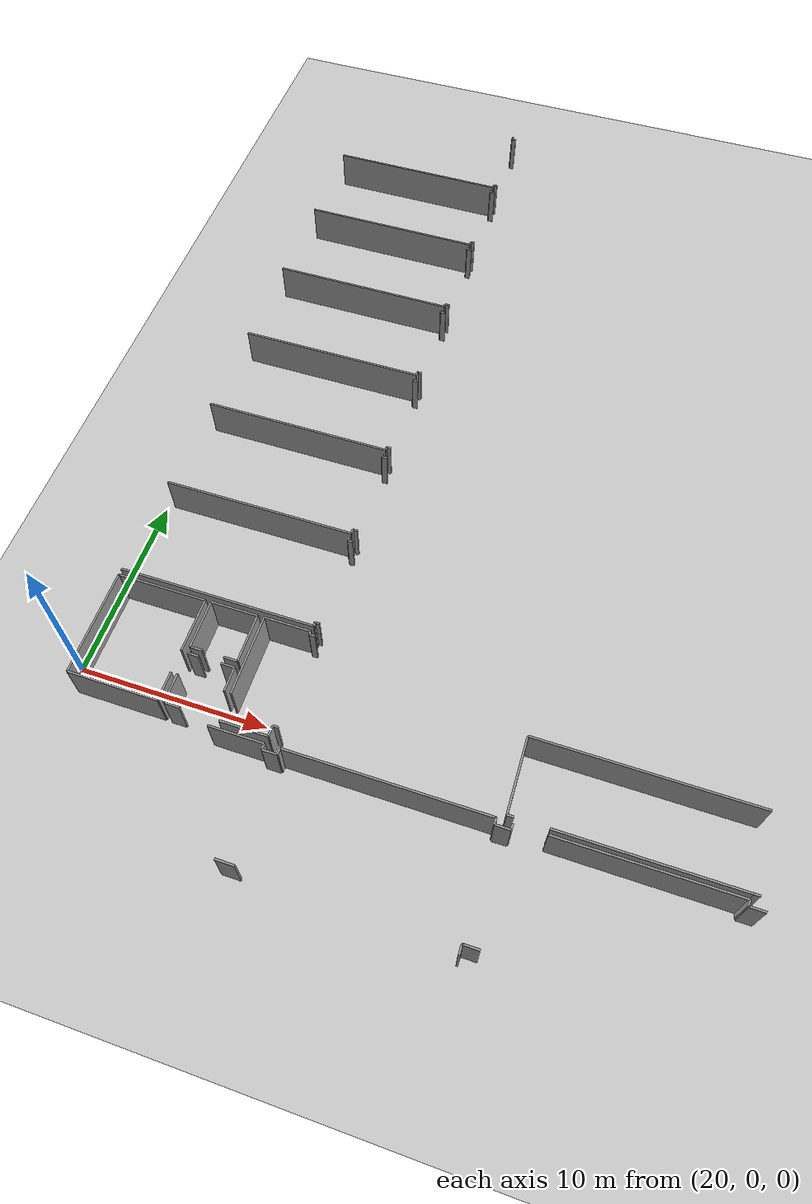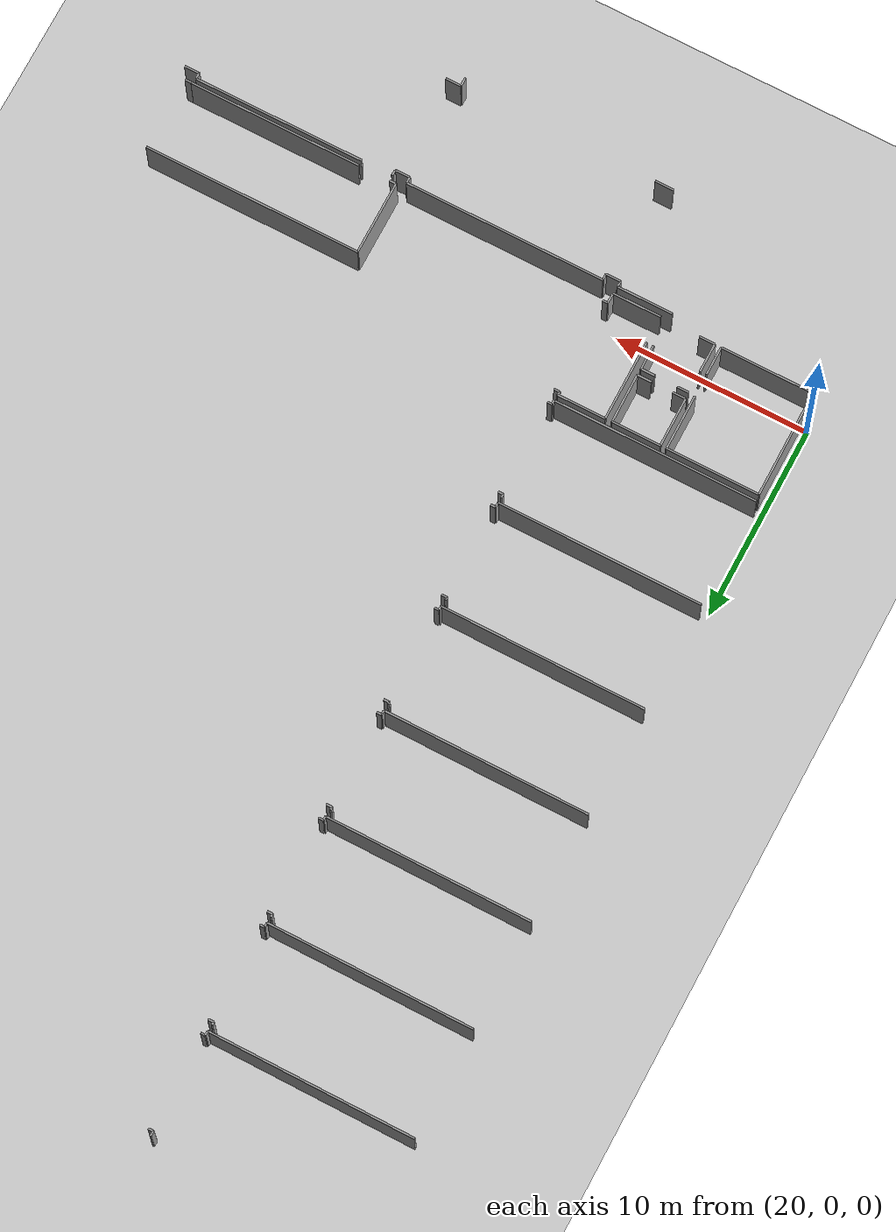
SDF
<sdf version="1.6">
 <world name="default">
  <model name="ground_plane">
   <static>1</static>
   <link name="link">
    <collision name="collision">
     <geometry><plane><normal>0 0 1</normal><size>100 100</size></plane></geometry>
     <surface><friction><ode><mu>100</mu><mu2>50</mu2></ode></friction></surface>
    </collision>
    <visual name="visual">
     <cast_shadows>0</cast_shadows>
     <geometry><plane><normal>0 0 1</normal><size>100 100</size></plane></geometry>
     <material>
      <script><uri>file://media/materials/scripts/gazebo.material</uri><name>Gazebo/Grey</name></script>
     </material>
    </visual>
   </link>
  </model>
  <model name="50015848">
   <static>1</static>
   <link name="Wall_539">
    <collision name="Wall_539_Collision">
     <geometry><box><size>2.86941242888 0.1 2.5</size></box></geometry>
     <pose>1.43470621444 0 1.25 0 0 0</pose>
    </collision>
    <visual name="Wall_539_Visual">
     <pose>1.43470621444 0 1.25 0 0 0</pose>
     <geometry><box><size>2.86941242888 0.1 2.5</size></box></geometry>
     <material>
      <script><uri>file://media/materials/scripts/gazebo.material</uri><name>Gazebo/Grey</name></script>
      <ambient>1 1 1 1</ambient>
     </material>
    </visual>
    <pose>159.700346973 -45.3011436799 0 0 0 0.0</pose>
   </link>
   <link name="Wall_540">
    <collision name="Wall_540_Collision">
     <geometry><box><size>0.300414211318 0.1 2.5</size></box></geometry>
     <pose>0.150207105659 0 1.25 0 0 0</pose>
    </collision>
    <visual name="Wall_540_Visual">
     <pose>0.150207105659 0 1.25 0 0 0</pose>
     <geometry><box><size>0.300414211318 0.1 2.5</size></box></geometry>
     <material>
      <script><uri>file://media/materials/scripts/gazebo.material</uri><name>Gazebo/Grey</name></script>
      <ambient>1 1 1 1</ambient>
     </material>
    </visual>
    <pose>162.569759402 -45.3011436799 0 0 0 -1.57079632679</pose>
   </link>
   <link name="Wall_541">
    <collision name="Wall_541_Collision">
     <geometry><box><size>0.76752786253 0.1 2.5</size></box></geometry>
     <pose>0.383763931265 0 1.25 0 0 0</pose>
    </collision>
    <visual name="Wall_541_Visual">
     <pose>0.383763931265 0 1.25 0 0 0</pose>
     <geometry><box><size>0.76752786253 0.1 2.5</size></box></geometry>
     <material>
      <script><uri>file://media/materials/scripts/gazebo.material</uri><name>Gazebo/Grey</name></script>
      <ambient>1 1 1 1</ambient>
     </material>
    </visual>
    <pose>162.569759402 -45.6015578913 0 0 0 0.0</pose>
   </link>
   <link name="Wall_542">
    <collision name="Wall_542_Collision">
     <geometry><box><size>0.316906545554 0.1 2.5</size></box></geometry>
     <pose>0.158453272777 0 1.25 0 0 0</pose>
    </collision>
    <visual name="Wall_542_Visual">
     <pose>0.158453272777 0 1.25 0 0 0</pose>
     <geometry><box><size>0.316906545554 0.1 2.5</size></box></geometry>
     <material>
      <script><uri>file://media/materials/scripts/gazebo.material</uri><name>Gazebo/Grey</name></script>
      <ambient>1 1 1 1</ambient>
     </material>
    </visual>
    <pose>163.337287265 -45.6015578913 0 0 0 1.57079632679</pose>
   </link>
   <link name="Wall_543">
    <collision name="Wall_543_Collision">
     <geometry><box><size>10.3516038795 0.1 2.5</size></box></geometry>
     <pose>5.17580193975 0 1.25 0 0 0</pose>
    </collision>
    <visual name="Wall_543_Visual">
     <pose>5.17580193975 0 1.25 0 0 0</pose>
     <geometry><box><size>10.3516038795 0.1 2.5</size></box></geometry>
     <material>
      <script><uri>file://media/materials/scripts/gazebo.material</uri><name>Gazebo/Grey</name></script>
      <ambient>1 1 1 1</ambient>
     </material>
    </visual>
    <pose>163.337287265 -45.2846513457 0 0 0 0.0</pose>
   </link>
   <link name="Wall_544">
    <collision name="Wall_544_Collision">
     <geometry><box><size>0.313100622268 0.1 2.5</size></box></geometry>
     <pose>0.156550311134 0 1.25 0 0 0</pose>
    </collision>
    <visual name="Wall_544_Visual">
     <pose>0.156550311134 0 1.25 0 0 0</pose>
     <geometry><box><size>0.313100622268 0.1 2.5</size></box></geometry>
     <material>
      <script><uri>file://media/materials/scripts/gazebo.material</uri><name>Gazebo/Grey</name></script>
      <ambient>1 1 1 1</ambient>
     </material>
    </visual>
    <pose>173.688891144 -45.2846513457 0 0 0 -1.57079632679</pose>
   </link>
   <link name="Wall_545">
    <collision name="Wall_545_Collision">
     <geometry><box><size>0.772348698691 0.1 2.5</size></box></geometry>
     <pose>0.386174349346 0 1.25 0 0 0</pose>
    </collision>
    <visual name="Wall_545_Visual">
     <pose>0.386174349346 0 1.25 0 0 0</pose>
     <geometry><box><size>0.772348698691 0.1 2.5</size></box></geometry>
     <material>
      <script><uri>file://media/materials/scripts/gazebo.material</uri><name>Gazebo/Grey</name></script>
      <ambient>1 1 1 1</ambient>
     </material>
    </visual>
    <pose>173.688891144 -45.597751968 0 0 0 0.0</pose>
   </link>
   <link name="Wall_546">
    <collision name="Wall_546_Collision">
     <geometry><box><size>0.298638113784 0.1 2.5</size></box></geometry>
     <pose>0.149319056892 0 1.25 0 0 0</pose>
    </collision>
    <visual name="Wall_546_Visual">
     <pose>0.149319056892 0 1.25 0 0 0</pose>
     <geometry><box><size>0.298638113784 0.1 2.5</size></box></geometry>
     <material>
      <script><uri>file://media/materials/scripts/gazebo.material</uri><name>Gazebo/Grey</name></script>
      <ambient>1 1 1 1</ambient>
     </material>
    </visual>
    <pose>174.461239843 -45.597751968 0 0 0 1.57079632679</pose>
   </link>
   <link name="Wall_547">
    <collision name="Wall_547_Collision">
     <geometry><box><size>8.84293588922 0.1 2.5</size></box></geometry>
     <pose>4.42146794461 0 1.25 0 0 0</pose>
    </collision>
    <visual name="Wall_547_Visual">
     <pose>4.42146794461 0 1.25 0 0 0</pose>
     <geometry><box><size>8.84293588922 0.1 2.5</size></box></geometry>
     <material>
      <script><uri>file://media/materials/scripts/gazebo.material</uri><name>Gazebo/Grey</name></script>
      <ambient>1 1 1 1</ambient>
     </material>
    </visual>
    <pose>176.076981142 -45.2991138542 0 0 0 0.0</pose>
   </link>
   <link name="Wall_548">
    <collision name="Wall_548_Collision">
     <geometry><box><size>0.298891842003 0.1 2.5</size></box></geometry>
     <pose>0.149445921002 0 1.25 0 0 0</pose>
    </collision>
    <visual name="Wall_548_Visual">
     <pose>0.149445921002 0 1.25 0 0 0</pose>
     <geometry><box><size>0.298891842003 0.1 2.5</size></box></geometry>
     <material>
      <script><uri>file://media/materials/scripts/gazebo.material</uri><name>Gazebo/Grey</name></script>
      <ambient>1 1 1 1</ambient>
     </material>
    </visual>
    <pose>184.919917031 -45.2991138542 0 0 0 -1.57079632679</pose>
   </link>
   <link name="Wall_549">
    <collision name="Wall_549_Collision">
     <geometry><box><size>0.769557688282 0.1 2.5</size></box></geometry>
     <pose>0.384778844141 0 1.25 0 0 0</pose>
    </collision>
    <visual name="Wall_549_Visual">
     <pose>0.384778844141 0 1.25 0 0 0</pose>
     <geometry><box><size>0.769557688282 0.1 2.5</size></box></geometry>
     <material>
      <script><uri>file://media/materials/scripts/gazebo.material</uri><name>Gazebo/Grey</name></script>
      <ambient>1 1 1 1</ambient>
     </material>
    </visual>
    <pose>184.919917031 -45.5980056962 0 0 0 0.0</pose>
   </link>
   <link name="Wall_615">
    <collision name="Wall_615_Collision">
     <geometry><box><size>0.801273715659 0.1 2.5</size></box></geometry>
     <pose>0.40063685783 0 1.25 0 0 0</pose>
    </collision>
    <visual name="Wall_615_Visual">
     <pose>0.40063685783 0 1.25 0 0 0</pose>
     <geometry><box><size>0.801273715659 0.1 2.5</size></box></geometry>
     <material>
      <script><uri>file://media/materials/scripts/gazebo.material</uri><name>Gazebo/Grey</name></script>
      <ambient>1 1 1 1</ambient>
     </material>
    </visual>
    <pose>174.505388553 -50.7816732107 0 0 0 3.14159265359</pose>
   </link>
   <link name="Wall_616">
    <collision name="Wall_616_Collision">
     <geometry><box><size>0.457979435328 0.1 2.5</size></box></geometry>
     <pose>0.228989717664 0 1.25 0 0 0</pose>
    </collision>
    <visual name="Wall_616_Visual">
     <pose>0.228989717664 0 1.25 0 0 0</pose>
     <geometry><box><size>0.457979435328 0.1 2.5</size></box></geometry>
     <material>
      <script><uri>file://media/materials/scripts/gazebo.material</uri><name>Gazebo/Grey</name></script>
      <ambient>1 1 1 1</ambient>
     </material>
    </visual>
    <pose>173.704114837 -50.7816732107 0 0 0 -1.57079632679</pose>
   </link>
   <link name="Wall_620">
    <collision name="Wall_620_Collision">
     <geometry><box><size>0.957570298575 0.1 2.5</size></box></geometry>
     <pose>0.478785149287 0 1.25 0 0 0</pose>
    </collision>
    <visual name="Wall_620_Visual">
     <pose>0.478785149287 0 1.25 0 0 0</pose>
     <geometry><box><size>0.957570298575 0.1 2.5</size></box></geometry>
     <material>
      <script><uri>file://media/materials/scripts/gazebo.material</uri><name>Gazebo/Grey</name></script>
      <ambient>1 1 1 1</ambient>
     </material>
    </visual>
    <pose>163.420002664 -50.7826881236 0 0 0 3.14159265359</pose>
   </link>
   <link name="Wall_811">
    <collision name="Wall_811_Collision">
     <geometry><box><size>10.4886171178 0.1 2.5</size></box></geometry>
     <pose>5.24430855889 0 1.25 0 0 0</pose>
    </collision>
    <visual name="Wall_811_Visual">
     <pose>5.24430855889 0 1.25 0 0 0</pose>
     <geometry><box><size>10.4886171178 0.1 2.5</size></box></geometry>
     <material>
      <script><uri>file://media/materials/scripts/gazebo.material</uri><name>Gazebo/Grey</name></script>
      <ambient>1 1 1 1</ambient>
     </material>
    </visual>
    <pose>162.622027415 -5.41938103001 0 0 0 3.14159265359</pose>
   </link>
   <link name="Wall_815">
    <collision name="Wall_815_Collision">
     <geometry><box><size>0.266922086407 0.1 2.5</size></box></geometry>
     <pose>0.133461043204 0 1.25 0 0 0</pose>
    </collision>
    <visual name="Wall_815_Visual">
     <pose>0.133461043204 0 1.25 0 0 0</pose>
     <geometry><box><size>0.266922086407 0.1 2.5</size></box></geometry>
     <material>
      <script><uri>file://media/materials/scripts/gazebo.material</uri><name>Gazebo/Grey</name></script>
      <ambient>1 1 1 1</ambient>
     </material>
    </visual>
    <pose>162.603251527 -0.0400890586049 0 0 0 -1.57079632679</pose>
   </link>
   <link name="Wall_816">
    <collision name="Wall_816_Collision">
     <geometry><box><size>0.253474490799 0.1 2.5</size></box></geometry>
     <pose>0.1267372454 0 1.25 0 0 0</pose>
    </collision>
    <visual name="Wall_816_Visual">
     <pose>0.1267372454 0 1.25 0 0 0</pose>
     <geometry><box><size>0.253474490799 0.1 2.5</size></box></geometry>
     <material>
      <script><uri>file://media/materials/scripts/gazebo.material</uri><name>Gazebo/Grey</name></script>
      <ambient>1 1 1 1</ambient>
     </material>
    </visual>
    <pose>162.603251527 -0.307011145012 0 0 0 0.0</pose>
   </link>
   <link name="Wall_817">
    <collision name="Wall_817_Collision">
     <geometry><box><size>0.216937627261 0.1 2.5</size></box></geometry>
     <pose>0.10846881363 0 1.25 0 0 0</pose>
    </collision>
    <visual name="Wall_817_Visual">
     <pose>0.10846881363 0 1.25 0 0 0</pose>
     <geometry><box><size>0.216937627261 0.1 2.5</size></box></geometry>
     <material>
      <script><uri>file://media/materials/scripts/gazebo.material</uri><name>Gazebo/Grey</name></script>
      <ambient>1 1 1 1</ambient>
     </material>
    </visual>
    <pose>162.856726018 -5.19736883837 0 0 0 3.14159265359</pose>
   </link>
   <link name="Wall_818">
    <collision name="Wall_818_Collision">
     <geometry><box><size>0.222721497575 0.1 2.5</size></box></geometry>
     <pose>0.111360748787 0 1.25 0 0 0</pose>
    </collision>
    <visual name="Wall_818_Visual">
     <pose>0.111360748787 0 1.25 0 0 0</pose>
     <geometry><box><size>0.222721497575 0.1 2.5</size></box></geometry>
     <material>
      <script><uri>file://media/materials/scripts/gazebo.material</uri><name>Gazebo/Grey</name></script>
      <ambient>1 1 1 1</ambient>
     </material>
    </visual>
    <pose>162.639788391 -5.19736883837 0 0 0 -1.65062631251</pose>
   </link>
   <link name="Wall_819">
    <collision name="Wall_819_Collision">
     <geometry><box><size>10.4741546093 0.1 2.5</size></box></geometry>
     <pose>5.23707730465 0 1.25 0 0 0</pose>
    </collision>
    <visual name="Wall_819_Visual">
     <pose>5.23707730465 0 1.25 0 0 0</pose>
     <geometry><box><size>10.4741546093 0.1 2.5</size></box></geometry>
     <material>
      <script><uri>file://media/materials/scripts/gazebo.material</uri><name>Gazebo/Grey</name></script>
      <ambient>1 1 1 1</ambient>
     </material>
    </visual>
    <pose>162.622027415 -11.0191628237 0 0 0 3.14159265359</pose>
   </link>
   <link name="Wall_823">
    <collision name="Wall_823_Collision">
     <geometry><box><size>0.1654307988 0.1 2.5</size></box></geometry>
     <pose>0.0827153993999 0 1.25 0 0 0</pose>
    </collision>
    <visual name="Wall_823_Visual">
     <pose>0.0827153993999 0 1.25 0 0 0</pose>
     <geometry><box><size>0.1654307988 0.1 2.5</size></box></geometry>
     <material>
      <script><uri>file://media/materials/scripts/gazebo.material</uri><name>Gazebo/Grey</name></script>
      <ambient>1 1 1 1</ambient>
     </material>
    </visual>
    <pose>162.587774106 -5.73400402159 0 0 0 -1.57079632679</pose>
   </link>
   <link name="Wall_824">
    <collision name="Wall_824_Collision">
     <geometry><box><size>0.285444246395 0.1 2.5</size></box></geometry>
     <pose>0.142722123198 0 1.25 0 0 0</pose>
    </collision>
    <visual name="Wall_824_Visual">
     <pose>0.142722123198 0 1.25 0 0 0</pose>
     <geometry><box><size>0.285444246395 0.1 2.5</size></box></geometry>
     <material>
      <script><uri>file://media/materials/scripts/gazebo.material</uri><name>Gazebo/Grey</name></script>
      <ambient>1 1 1 1</ambient>
     </material>
    </visual>
    <pose>162.587774106 -5.89943482039 0 0 0 0.0</pose>
   </link>
   <link name="Wall_825">
    <collision name="Wall_825_Collision">
     <geometry><box><size>0.230385222869 0.1 2.5</size></box></geometry>
     <pose>0.115192611434 0 1.25 0 0 0</pose>
    </collision>
    <visual name="Wall_825_Visual">
     <pose>0.115192611434 0 1.25 0 0 0</pose>
     <geometry><box><size>0.230385222869 0.1 2.5</size></box></geometry>
     <material>
      <script><uri>file://media/materials/scripts/gazebo.material</uri><name>Gazebo/Grey</name></script>
      <ambient>1 1 1 1</ambient>
     </material>
    </visual>
    <pose>162.873218352 -10.7806582979 0 0 0 3.14159265359</pose>
   </link>
   <link name="Wall_826">
    <collision name="Wall_826_Collision">
     <geometry><box><size>0.239410289247 0.1 2.5</size></box></geometry>
     <pose>0.119705144623 0 1.25 0 0 0</pose>
    </collision>
    <visual name="Wall_826_Visual">
     <pose>0.119705144623 0 1.25 0 0 0</pose>
     <geometry><box><size>0.239410289247 0.1 2.5</size></box></geometry>
     <material>
      <script><uri>file://media/materials/scripts/gazebo.material</uri><name>Gazebo/Grey</name></script>
      <ambient>1 1 1 1</ambient>
     </material>
    </visual>
    <pose>162.642833129 -10.7806582979 0 0 0 -1.65781009697</pose>
   </link>
   <link name="Wall_827">
    <collision name="Wall_827_Collision">
     <geometry><box><size>10.5030796263 0.1 2.5</size></box></geometry>
     <pose>5.25153981313 0 1.25 0 0 0</pose>
    </collision>
    <visual name="Wall_827_Visual">
     <pose>5.25153981313 0 1.25 0 0 0</pose>
     <geometry><box><size>10.5030796263 0.1 2.5</size></box></geometry>
     <material>
      <script><uri>file://media/materials/scripts/gazebo.material</uri><name>Gazebo/Grey</name></script>
      <ambient>1 1 1 1</ambient>
     </material>
    </visual>
    <pose>162.622027415 -16.5897658723 0 0 0 3.14159265359</pose>
   </link>
   <link name="Wall_831">
    <collision name="Wall_831_Collision">
     <geometry><box><size>0.164923342362 0.1 2.5</size></box></geometry>
     <pose>0.0824616711809 0 1.25 0 0 0</pose>
    </collision>
    <visual name="Wall_831_Visual">
     <pose>0.0824616711809 0 1.25 0 0 0</pose>
     <geometry><box><size>0.164923342362 0.1 2.5</size></box></geometry>
     <material>
      <script><uri>file://media/materials/scripts/gazebo.material</uri><name>Gazebo/Grey</name></script>
      <ambient>1 1 1 1</ambient>
     </material>
    </visual>
    <pose>162.60426644 -11.3178009375 0 0 0 -1.57079632679</pose>
   </link>
   <link name="Wall_832">
    <collision name="Wall_832_Collision">
     <geometry><box><size>0.273519020102 0.1 2.5</size></box></geometry>
     <pose>0.136759510051 0 1.25 0 0 0</pose>
    </collision>
    <visual name="Wall_832_Visual">
     <pose>0.136759510051 0 1.25 0 0 0</pose>
     <geometry><box><size>0.273519020102 0.1 2.5</size></box></geometry>
     <material>
      <script><uri>file://media/materials/scripts/gazebo.material</uri><name>Gazebo/Grey</name></script>
      <ambient>1 1 1 1</ambient>
     </material>
    </visual>
    <pose>162.60426644 -11.4827242799 0 0 0 0.0</pose>
   </link>
   <link name="Wall_833">
    <collision name="Wall_833_Collision">
     <geometry><box><size>0.246116372448 0.1 2.5</size></box></geometry>
     <pose>0.123058186224 0 1.25 0 0 0</pose>
    </collision>
    <visual name="Wall_833_Visual">
     <pose>0.123058186224 0 1.25 0 0 0</pose>
     <geometry><box><size>0.246116372448 0.1 2.5</size></box></geometry>
     <material>
      <script><uri>file://media/materials/scripts/gazebo.material</uri><name>Gazebo/Grey</name></script>
      <ambient>1 1 1 1</ambient>
     </material>
    </visual>
    <pose>162.87778546 -16.3860221124 0 0 0 3.14159265359</pose>
   </link>
   <link name="Wall_834">
    <collision name="Wall_834_Collision">
     <geometry><box><size>0.203971766507 0.1 2.5</size></box></geometry>
     <pose>0.101985883253 0 1.25 0 0 0</pose>
    </collision>
    <visual name="Wall_834_Visual">
     <pose>0.101985883253 0 1.25 0 0 0</pose>
     <geometry><box><size>0.203971766507 0.1 2.5</size></box></geometry>
     <material>
      <script><uri>file://media/materials/scripts/gazebo.material</uri><name>Gazebo/Grey</name></script>
      <ambient>1 1 1 1</ambient>
     </material>
    </visual>
    <pose>162.631669088 -16.3860221124 0 0 0 -1.6180835896</pose>
   </link>
   <link name="Wall_835">
    <collision name="Wall_835_Collision">
     <geometry><box><size>10.4827813687 0.1 2.5</size></box></geometry>
     <pose>5.24139068437 0 1.25 0 0 0</pose>
    </collision>
    <visual name="Wall_835_Visual">
     <pose>5.24139068437 0 1.25 0 0 0</pose>
     <geometry><box><size>10.4827813687 0.1 2.5</size></box></geometry>
     <material>
      <script><uri>file://media/materials/scripts/gazebo.material</uri><name>Gazebo/Grey</name></script>
      <ambient>1 1 1 1</ambient>
     </material>
    </visual>
    <pose>162.616952851 -22.197666969 0 0 0 3.14159265359</pose>
   </link>
   <link name="Wall_839">
    <collision name="Wall_839_Collision">
     <geometry><box><size>0.139804248679 0.1 2.5</size></box></geometry>
     <pose>0.0699021243395 0 1.25 0 0 0</pose>
    </collision>
    <visual name="Wall_839_Visual">
     <pose>0.0699021243395 0 1.25 0 0 0</pose>
     <geometry><box><size>0.139804248679 0.1 2.5</size></box></geometry>
     <material>
      <script><uri>file://media/materials/scripts/gazebo.material</uri><name>Gazebo/Grey</name></script>
      <ambient>1 1 1 1</ambient>
     </material>
    </visual>
    <pose>162.563923653 -16.9576717899 0 0 0 -1.57079632679</pose>
   </link>
   <link name="Wall_840">
    <collision name="Wall_840_Collision">
     <geometry><box><size>0.304727591041 0.1 2.5</size></box></geometry>
     <pose>0.15236379552 0 1.25 0 0 0</pose>
    </collision>
    <visual name="Wall_840_Visual">
     <pose>0.15236379552 0 1.25 0 0 0</pose>
     <geometry><box><size>0.304727591041 0.1 2.5</size></box></geometry>
     <material>
      <script><uri>file://media/materials/scripts/gazebo.material</uri><name>Gazebo/Grey</name></script>
      <ambient>1 1 1 1</ambient>
     </material>
    </visual>
    <pose>162.563923653 -17.0974760385 0 0 0 0.0</pose>
   </link>
   <link name="Wall_841">
    <collision name="Wall_841_Collision">
     <geometry><box><size>0.239011982315 0.1 2.5</size></box></geometry>
     <pose>0.119505991158 0 1.25 0 0 0</pose>
    </collision>
    <visual name="Wall_841_Visual">
     <pose>0.119505991158 0 1.25 0 0 0</pose>
     <geometry><box><size>0.239011982315 0.1 2.5</size></box></geometry>
     <material>
      <script><uri>file://media/materials/scripts/gazebo.material</uri><name>Gazebo/Grey</name></script>
      <ambient>1 1 1 1</ambient>
     </material>
    </visual>
    <pose>162.868651244 -21.970580213 0 0 0 3.14159265359</pose>
   </link>
   <link name="Wall_842">
    <collision name="Wall_842_Collision">
     <geometry><box><size>0.227440848976 0.1 2.5</size></box></geometry>
     <pose>0.113720424488 0 1.25 0 0 0</pose>
    </collision>
    <visual name="Wall_842_Visual">
     <pose>0.113720424488 0 1.25 0 0 0</pose>
     <geometry><box><size>0.227440848976 0.1 2.5</size></box></geometry>
     <material>
      <script><uri>file://media/materials/scripts/gazebo.material</uri><name>Gazebo/Grey</name></script>
      <ambient>1 1 1 1</ambient>
     </material>
    </visual>
    <pose>162.629639262 -21.970580213 0 0 0 -1.62660423797</pose>
   </link>
   <link name="Wall_843">
    <collision name="Wall_843_Collision">
     <geometry><box><size>10.4741546093 0.1 2.5</size></box></geometry>
     <pose>5.23707730465 0 1.25 0 0 0</pose>
    </collision>
    <visual name="Wall_843_Visual">
     <pose>5.23707730465 0 1.25 0 0 0</pose>
     <geometry><box><size>10.4741546093 0.1 2.5</size></box></geometry>
     <material>
      <script><uri>file://media/materials/scripts/gazebo.material</uri><name>Gazebo/Grey</name></script>
      <ambient>1 1 1 1</ambient>
     </material>
    </visual>
    <pose>162.622027415 -27.774613223 0 0 0 3.14159265359</pose>
   </link>
   <link name="Wall_847">
    <collision name="Wall_847_Collision">
     <geometry><box><size>0.0898197895324 0.1 2.5</size></box></geometry>
     <pose>0.0449098947662 0 1.25 0 0 0</pose>
    </collision>
    <visual name="Wall_847_Visual">
     <pose>0.0449098947662 0 1.25 0 0 0</pose>
     <geometry><box><size>0.0898197895324 0.1 2.5</size></box></geometry>
     <material>
      <script><uri>file://media/materials/scripts/gazebo.material</uri><name>Gazebo/Grey</name></script>
      <ambient>1 1 1 1</ambient>
     </material>
    </visual>
    <pose>162.576863792 -22.5597371376 0 0 0 -1.57079632679</pose>
   </link>
   <link name="Wall_848">
    <collision name="Wall_848_Collision">
     <geometry><box><size>0.285190518176 0.1 2.5</size></box></geometry>
     <pose>0.142595259088 0 1.25 0 0 0</pose>
    </collision>
    <visual name="Wall_848_Visual">
     <pose>0.142595259088 0 1.25 0 0 0</pose>
     <geometry><box><size>0.285190518176 0.1 2.5</size></box></geometry>
     <material>
      <script><uri>file://media/materials/scripts/gazebo.material</uri><name>Gazebo/Grey</name></script>
      <ambient>1 1 1 1</ambient>
     </material>
    </visual>
    <pose>162.576863792 -22.6495569271 0 0 0 0.0</pose>
   </link>
   <link name="Wall_849">
    <collision name="Wall_849_Collision">
     <geometry><box><size>0.241295536286 0.1 2.5</size></box></geometry>
     <pose>0.120647768143 0 1.25 0 0 0</pose>
    </collision>
    <visual name="Wall_849_Visual">
     <pose>0.120647768143 0 1.25 0 0 0</pose>
     <geometry><box><size>0.241295536286 0.1 2.5</size></box></geometry>
     <material>
      <script><uri>file://media/materials/scripts/gazebo.material</uri><name>Gazebo/Grey</name></script>
      <ambient>1 1 1 1</ambient>
     </material>
    </visual>
    <pose>162.862054311 -27.5749291147 0 0 0 3.14159265359</pose>
   </link>
   <link name="Wall_850">
    <collision name="Wall_850_Collision">
     <geometry><box><size>0.199688138317 0.1 2.5</size></box></geometry>
     <pose>0.0998440691587 0 1.25 0 0 0</pose>
    </collision>
    <visual name="Wall_850_Visual">
     <pose>0.0998440691587 0 1.25 0 0 0</pose>
     <geometry><box><size>0.199688138317 0.1 2.5</size></box></geometry>
     <material>
      <script><uri>file://media/materials/scripts/gazebo.material</uri><name>Gazebo/Grey</name></script>
      <ambient>1 1 1 1</ambient>
     </material>
    </visual>
    <pose>162.620758774 -27.5749291147 0 0 0 -1.56444317212</pose>
   </link>
   <link name="Wall_851">
    <collision name="Wall_851_Collision">
     <geometry><box><size>10.4886171178 0.1 2.5</size></box></geometry>
     <pose>5.24430855889 0 1.25 0 0 0</pose>
    </collision>
    <visual name="Wall_851_Visual">
     <pose>5.24430855889 0 1.25 0 0 0</pose>
     <geometry><box><size>10.4886171178 0.1 2.5</size></box></geometry>
     <material>
      <script><uri>file://media/materials/scripts/gazebo.material</uri><name>Gazebo/Grey</name></script>
      <ambient>1 1 1 1</ambient>
     </material>
    </visual>
    <pose>162.607564907 -33.3888575253 0 0 0 3.14159265359</pose>
   </link>
   <link name="Wall_855">
    <collision name="Wall_855_Collision">
     <geometry><box><size>0.142341530869 0.1 2.5</size></box></geometry>
     <pose>0.0711707654346 0 1.25 0 0 0</pose>
    </collision>
    <visual name="Wall_855_Visual">
     <pose>0.0711707654346 0 1.25 0 0 0</pose>
     <geometry><box><size>0.142341530869 0.1 2.5</size></box></geometry>
     <material>
      <script><uri>file://media/materials/scripts/gazebo.material</uri><name>Gazebo/Grey</name></script>
      <ambient>1 1 1 1</ambient>
     </material>
    </visual>
    <pose>162.576863792 -28.1343998376 0 0 0 -1.57079632679</pose>
   </link>
   <link name="Wall_856">
    <collision name="Wall_856_Collision">
     <geometry><box><size>0.296354559813 0.1 2.5</size></box></geometry>
     <pose>0.148177279907 0 1.25 0 0 0</pose>
    </collision>
    <visual name="Wall_856_Visual">
     <pose>0.148177279907 0 1.25 0 0 0</pose>
     <geometry><box><size>0.296354559813 0.1 2.5</size></box></geometry>
     <material>
      <script><uri>file://media/materials/scripts/gazebo.material</uri><name>Gazebo/Grey</name></script>
      <ambient>1 1 1 1</ambient>
     </material>
    </visual>
    <pose>162.576863792 -28.2767413685 0 0 0 0.0</pose>
   </link>
   <link name="Wall_857">
    <collision name="Wall_857_Collision">
     <geometry><box><size>0.248907382857 0.1 2.5</size></box></geometry>
     <pose>0.124453691428 0 1.25 0 0 0</pose>
    </collision>
    <visual name="Wall_857_Visual">
     <pose>0.124453691428 0 1.25 0 0 0</pose>
     <geometry><box><size>0.248907382857 0.1 2.5</size></box></geometry>
     <material>
      <script><uri>file://media/materials/scripts/gazebo.material</uri><name>Gazebo/Grey</name></script>
      <ambient>1 1 1 1</ambient>
     </material>
    </visual>
    <pose>162.873218352 -33.1404575988 0 0 0 3.14159265359</pose>
   </link>
   <link name="Wall_858">
    <collision name="Wall_858_Collision">
     <geometry><box><size>0.248963760521 0.1 2.5</size></box></geometry>
     <pose>0.12448188026 0 1.25 0 0 0</pose>
    </collision>
    <visual name="Wall_858_Visual">
     <pose>0.12448188026 0 1.25 0 0 0</pose>
     <geometry><box><size>0.248963760521 0.1 2.5</size></box></geometry>
     <material>
      <script><uri>file://media/materials/scripts/gazebo.material</uri><name>Gazebo/Grey</name></script>
      <ambient>1 1 1 1</ambient>
     </material>
    </visual>
    <pose>162.624310969 -33.1404575988 0 0 0 -1.63811020259</pose>
   </link>
   <link name="Wall_859">
    <collision name="Wall_859_Collision">
     <geometry><box><size>10.5137362115 0.1 2.5</size></box></geometry>
     <pose>5.25686810573 0 1.25 0 0 0</pose>
    </collision>
    <visual name="Wall_859_Visual">
     <pose>5.25686810573 0 1.25 0 0 0</pose>
     <geometry><box><size>10.5137362115 0.1 2.5</size></box></geometry>
     <material>
      <script><uri>file://media/materials/scripts/gazebo.material</uri><name>Gazebo/Grey</name></script>
      <ambient>1 1 1 1</ambient>
     </material>
    </visual>
    <pose>162.632430272 -38.9825498417 0 0 0 3.14159265359</pose>
   </link>
   <link name="Wall_863">
    <collision name="Wall_863_Collision">
     <geometry><box><size>0.182430589474 0.1 2.5</size></box></geometry>
     <pose>0.091215294737 0 1.25 0 0 0</pose>
    </collision>
    <visual name="Wall_863_Visual">
     <pose>0.091215294737 0 1.25 0 0 0</pose>
     <geometry><box><size>0.182430589474 0.1 2.5</size></box></geometry>
     <material>
      <script><uri>file://media/materials/scripts/gazebo.material</uri><name>Gazebo/Grey</name></script>
      <ambient>1 1 1 1</ambient>
     </material>
    </visual>
    <pose>162.591833757 -33.6682122944 0 0 0 -1.57079632679</pose>
   </link>
   <link name="Wall_864">
    <collision name="Wall_864_Collision">
     <geometry><box><size>0.266922086407 0.1 2.5</size></box></geometry>
     <pose>0.133461043204 0 1.25 0 0 0</pose>
    </collision>
    <visual name="Wall_864_Visual">
     <pose>0.133461043204 0 1.25 0 0 0</pose>
     <geometry><box><size>0.266922086407 0.1 2.5</size></box></geometry>
     <material>
      <script><uri>file://media/materials/scripts/gazebo.material</uri><name>Gazebo/Grey</name></script>
      <ambient>1 1 1 1</ambient>
     </material>
    </visual>
    <pose>162.591833757 -33.8506428839 0 0 0 0.0</pose>
   </link>
   <link name="Wall_865">
    <collision name="Wall_865_Collision">
     <geometry><box><size>0.243832818477 0.1 2.5</size></box></geometry>
     <pose>0.121916409238 0 1.25 0 0 0</pose>
    </collision>
    <visual name="Wall_865_Visual">
     <pose>0.121916409238 0 1.25 0 0 0</pose>
     <geometry><box><size>0.243832818477 0.1 2.5</size></box></geometry>
     <material>
      <script><uri>file://media/materials/scripts/gazebo.material</uri><name>Gazebo/Grey</name></script>
      <ambient>1 1 1 1</ambient>
     </material>
    </visual>
    <pose>162.858755844 -38.7681494967 0 0 0 3.14159265359</pose>
   </link>
   <link name="Wall_866">
    <collision name="Wall_866_Collision">
     <geometry><box><size>0.215113950426 0.1 2.5</size></box></geometry>
     <pose>0.107556975213 0 1.25 0 0 0</pose>
    </collision>
    <visual name="Wall_866_Visual">
     <pose>0.107556975213 0 1.25 0 0 0</pose>
     <geometry><box><size>0.215113950426 0.1 2.5</size></box></geometry>
     <material>
      <script><uri>file://media/materials/scripts/gazebo.material</uri><name>Gazebo/Grey</name></script>
      <ambient>1 1 1 1</ambient>
     </material>
    </visual>
    <pose>162.614923025 -38.7681494967 0 0 0 -1.48932029074</pose>
   </link>
   <link name="Wall_867">
    <collision name="Wall_867_Collision">
     <geometry><box><size>0.804064726069 0.1 2.5</size></box></geometry>
     <pose>0.402032363034 0 1.25 0 0 0</pose>
    </collision>
    <visual name="Wall_867_Visual">
     <pose>0.402032363034 0 1.25 0 0 0</pose>
     <geometry><box><size>0.804064726069 0.1 2.5</size></box></geometry>
     <material>
      <script><uri>file://media/materials/scripts/gazebo.material</uri><name>Gazebo/Grey</name></script>
      <ambient>1 1 1 1</ambient>
     </material>
    </visual>
    <pose>158.085366859 -44.8916263345 0 0 0 3.14159265359</pose>
   </link>
   <link name="Wall_868">
    <collision name="Wall_868_Collision">
     <geometry><box><size>1.52566778096 0.1 2.5</size></box></geometry>
     <pose>0.762833890478 0 1.25 0 0 0</pose>
    </collision>
    <visual name="Wall_868_Visual">
     <pose>0.762833890478 0 1.25 0 0 0</pose>
     <geometry><box><size>1.52566778096 0.1 2.5</size></box></geometry>
     <material>
      <script><uri>file://media/materials/scripts/gazebo.material</uri><name>Gazebo/Grey</name></script>
      <ambient>1 1 1 1</ambient>
     </material>
    </visual>
    <pose>157.281302133 -44.8916263345 0 0 0 1.57079632679</pose>
   </link>
   <link name="Wall_869">
    <collision name="Wall_869_Collision">
     <geometry><box><size>0.58915692456 0.1 2.5</size></box></geometry>
     <pose>0.29457846228 0 1.25 0 0 0</pose>
    </collision>
    <visual name="Wall_869_Visual">
     <pose>0.29457846228 0 1.25 0 0 0</pose>
     <geometry><box><size>0.58915692456 0.1 2.5</size></box></geometry>
     <material>
      <script><uri>file://media/materials/scripts/gazebo.material</uri><name>Gazebo/Grey</name></script>
      <ambient>1 1 1 1</ambient>
     </material>
    </visual>
    <pose>157.281302133 -42.2185995471 0 0 0 0.0</pose>
   </link>
   <link name="Wall_870">
    <collision name="Wall_870_Collision">
     <geometry><box><size>0.715259849412 0.1 2.5</size></box></geometry>
     <pose>0.357629924706 0 1.25 0 0 0</pose>
    </collision>
    <visual name="Wall_870_Visual">
     <pose>0.357629924706 0 1.25 0 0 0</pose>
     <geometry><box><size>0.715259849412 0.1 2.5</size></box></geometry>
     <material>
      <script><uri>file://media/materials/scripts/gazebo.material</uri><name>Gazebo/Grey</name></script>
      <ambient>1 1 1 1</ambient>
     </material>
    </visual>
    <pose>159.043444614 -42.2185995471 0 0 0 0.0</pose>
   </link>
   <link name="Wall_871">
    <collision name="Wall_871_Collision">
     <geometry><box><size>1.28554343682 0.1 2.5</size></box></geometry>
     <pose>0.642771718408 0 1.25 0 0 0</pose>
    </collision>
    <visual name="Wall_871_Visual">
     <pose>0.642771718408 0 1.25 0 0 0</pose>
     <geometry><box><size>1.28554343682 0.1 2.5</size></box></geometry>
     <material>
      <script><uri>file://media/materials/scripts/gazebo.material</uri><name>Gazebo/Grey</name></script>
      <ambient>1 1 1 1</ambient>
     </material>
    </visual>
    <pose>159.758704464 -42.2185995471 0 0 0 -1.55520343354</pose>
   </link>
   <link name="Wall_872">
    <collision name="Wall_872_Collision">
     <geometry><box><size>4.78709030822 0.1 2.5</size></box></geometry>
     <pose>2.39354515411 0 1.25 0 0 0</pose>
    </collision>
    <visual name="Wall_872_Visual">
     <pose>2.39354515411 0 1.25 0 0 0</pose>
     <geometry><box><size>4.78709030822 0.1 2.5</size></box></geometry>
     <material>
      <script><uri>file://media/materials/scripts/gazebo.material</uri><name>Gazebo/Grey</name></script>
      <ambient>1 1 1 1</ambient>
     </material>
    </visual>
    <pose>156.949679351 -44.8784324671 0 0 0 3.14159265359</pose>
   </link>
   <link name="Wall_873">
    <collision name="Wall_873_Collision">
     <geometry><box><size>5.55614054006 0.1 2.5</size></box></geometry>
     <pose>2.77807027003 0 1.25 0 0 0</pose>
    </collision>
    <visual name="Wall_873_Visual">
     <pose>2.77807027003 0 1.25 0 0 0</pose>
     <geometry><box><size>5.55614054006 0.1 2.5</size></box></geometry>
     <material>
      <script><uri>file://media/materials/scripts/gazebo.material</uri><name>Gazebo/Grey</name></script>
      <ambient>1 1 1 1</ambient>
     </material>
    </visual>
    <pose>152.162589043 -44.8784324671 0 0 0 1.57079632679</pose>
   </link>
   <link name="Wall_874">
    <collision name="Wall_874_Collision">
     <geometry><box><size>4.78709030822 0.1 2.5</size></box></geometry>
     <pose>2.39354515411 0 1.25 0 0 0</pose>
    </collision>
    <visual name="Wall_874_Visual">
     <pose>2.39354515411 0 1.25 0 0 0</pose>
     <geometry><box><size>4.78709030822 0.1 2.5</size></box></geometry>
     <material>
      <script><uri>file://media/materials/scripts/gazebo.material</uri><name>Gazebo/Grey</name></script>
      <ambient>1 1 1 1</ambient>
     </material>
    </visual>
    <pose>152.162589043 -39.322291927 0 0 0 0.0</pose>
   </link>
   <link name="Wall_875">
    <collision name="Wall_875_Collision">
     <geometry><box><size>2.87220343929 0.1 2.5</size></box></geometry>
     <pose>1.43610171964 0 1.25 0 0 0</pose>
    </collision>
    <visual name="Wall_875_Visual">
     <pose>1.43610171964 0 1.25 0 0 0</pose>
     <geometry><box><size>2.87220343929 0.1 2.5</size></box></geometry>
     <material>
      <script><uri>file://media/materials/scripts/gazebo.material</uri><name>Gazebo/Grey</name></script>
      <ambient>1 1 1 1</ambient>
     </material>
    </visual>
    <pose>156.949679351 -39.322291927 0 0 0 -1.57079632679</pose>
   </link>
   <link name="Wall_876">
    <collision name="Wall_876_Collision">
     <geometry><box><size>1.49572785111 0.1 2.5</size></box></geometry>
     <pose>0.747863925556 0 1.25 0 0 0</pose>
    </collision>
    <visual name="Wall_876_Visual">
     <pose>0.747863925556 0 1.25 0 0 0</pose>
     <geometry><box><size>1.49572785111 0.1 2.5</size></box></geometry>
     <material>
      <script><uri>file://media/materials/scripts/gazebo.material</uri><name>Gazebo/Grey</name></script>
      <ambient>1 1 1 1</ambient>
     </material>
    </visual>
    <pose>156.949679351 -43.382704616 0 0 0 -1.57079632679</pose>
   </link>
   <link name="Wall_877">
    <collision name="Wall_877_Collision">
     <geometry><box><size>0.731752183648 0.1 2.5</size></box></geometry>
     <pose>0.365876091824 0 1.25 0 0 0</pose>
    </collision>
    <visual name="Wall_877_Visual">
     <pose>0.365876091824 0 1.25 0 0 0</pose>
     <geometry><box><size>0.731752183648 0.1 2.5</size></box></geometry>
     <material>
      <script><uri>file://media/materials/scripts/gazebo.material</uri><name>Gazebo/Grey</name></script>
      <ambient>1 1 1 1</ambient>
     </material>
    </visual>
    <pose>159.778748993 -41.8765739079 0 0 0 3.14159265359</pose>
   </link>
   <link name="Wall_878">
    <collision name="Wall_878_Collision">
     <geometry><box><size>0.667305216018 0.1 2.5</size></box></geometry>
     <pose>0.333652608009 0 1.25 0 0 0</pose>
    </collision>
    <visual name="Wall_878_Visual">
     <pose>0.333652608009 0 1.25 0 0 0</pose>
     <geometry><box><size>0.667305216018 0.1 2.5</size></box></geometry>
     <material>
      <script><uri>file://media/materials/scripts/gazebo.material</uri><name>Gazebo/Grey</name></script>
      <ambient>1 1 1 1</ambient>
     </material>
    </visual>
    <pose>157.931861287 -41.8765739079 0 0 0 3.14159265359</pose>
   </link>
   <link name="Wall_879">
    <collision name="Wall_879_Collision">
     <geometry><box><size>2.56443110962 0.1 2.5</size></box></geometry>
     <pose>1.28221555481 0 1.25 0 0 0</pose>
    </collision>
    <visual name="Wall_879_Visual">
     <pose>1.28221555481 0 1.25 0 0 0</pose>
     <geometry><box><size>2.56443110962 0.1 2.5</size></box></geometry>
     <material>
      <script><uri>file://media/materials/scripts/gazebo.material</uri><name>Gazebo/Grey</name></script>
      <ambient>1 1 1 1</ambient>
     </material>
    </visual>
    <pose>157.264556071 -41.8765739079 0 0 0 1.57079632679</pose>
   </link>
   <link name="Wall_880">
    <collision name="Wall_880_Collision">
     <geometry><box><size>2.5015065113 0.1 2.5</size></box></geometry>
     <pose>1.25075325565 0 1.25 0 0 0</pose>
    </collision>
    <visual name="Wall_880_Visual">
     <pose>1.25075325565 0 1.25 0 0 0</pose>
     <geometry><box><size>2.5015065113 0.1 2.5</size></box></geometry>
     <material>
      <script><uri>file://media/materials/scripts/gazebo.material</uri><name>Gazebo/Grey</name></script>
      <ambient>1 1 1 1</ambient>
     </material>
    </visual>
    <pose>157.264556071 -39.3121427982 0 0 0 0.0</pose>
   </link>
   <link name="Wall_881">
    <collision name="Wall_881_Collision">
     <geometry><box><size>2.56446248968 0.1 2.5</size></box></geometry>
     <pose>1.28223124484 0 1.25 0 0 0</pose>
    </collision>
    <visual name="Wall_881_Visual">
     <pose>1.28223124484 0 1.25 0 0 0</pose>
     <geometry><box><size>2.56446248968 0.1 2.5</size></box></geometry>
     <material>
      <script><uri>file://media/materials/scripts/gazebo.material</uri><name>Gazebo/Grey</name></script>
      <ambient>1 1 1 1</ambient>
     </material>
    </visual>
    <pose>159.766062582 -39.3121427982 0 0 0 -1.56584930076</pose>
   </link>
   <link name="Wall_882">
    <collision name="Wall_882_Collision">
     <geometry><box><size>2.48450672063 0.1 2.5</size></box></geometry>
     <pose>1.24225336031 0 1.25 0 0 0</pose>
    </collision>
    <visual name="Wall_882_Visual">
     <pose>1.24225336031 0 1.25 0 0 0</pose>
     <geometry><box><size>2.48450672063 0.1 2.5</size></box></geometry>
     <material>
      <script><uri>file://media/materials/scripts/gazebo.material</uri><name>Gazebo/Grey</name></script>
      <ambient>1 1 1 1</ambient>
     </material>
    </visual>
    <pose>162.60426644 -44.9167454281 0 0 0 3.14159265359</pose>
   </link>
   <link name="Wall_883">
    <collision name="Wall_883_Collision">
     <geometry><box><size>4.21341080502 0.1 2.5</size></box></geometry>
     <pose>2.10670540251 0 1.25 0 0 0</pose>
    </collision>
    <visual name="Wall_883_Visual">
     <pose>2.10670540251 0 1.25 0 0 0</pose>
     <geometry><box><size>4.21341080502 0.1 2.5</size></box></geometry>
     <material>
      <script><uri>file://media/materials/scripts/gazebo.material</uri><name>Gazebo/Grey</name></script>
      <ambient>1 1 1 1</ambient>
     </material>
    </visual>
    <pose>160.119759719 -43.5039867046 0 0 0 1.57079632679</pose>
   </link>
   <link name="Wall_884">
    <collision name="Wall_884_Collision">
     <geometry><box><size>2.47207403789 0.1 2.5</size></box></geometry>
     <pose>1.23603701895 0 1.25 0 0 0</pose>
    </collision>
    <visual name="Wall_884_Visual">
     <pose>1.23603701895 0 1.25 0 0 0</pose>
     <geometry><box><size>2.47207403789 0.1 2.5</size></box></geometry>
     <material>
      <script><uri>file://media/materials/scripts/gazebo.material</uri><name>Gazebo/Grey</name></script>
      <ambient>1 1 1 1</ambient>
     </material>
    </visual>
    <pose>160.119759719 -39.2905758996 0 0 0 0.0</pose>
   </link>
   <link name="Wall_885">
    <collision name="Wall_885_Collision">
     <geometry><box><size>0.17837093797 0.1 2.5</size></box></geometry>
     <pose>0.0891854689849 0 1.25 0 0 0</pose>
    </collision>
    <visual name="Wall_885_Visual">
     <pose>0.0891854689849 0 1.25 0 0 0</pose>
     <geometry><box><size>0.17837093797 0.1 2.5</size></box></geometry>
     <material>
      <script><uri>file://media/materials/scripts/gazebo.material</uri><name>Gazebo/Grey</name></script>
      <ambient>1 1 1 1</ambient>
     </material>
    </visual>
    <pose>162.591833757 -39.2905758996 0 0 0 -1.57079632679</pose>
   </link>
   <link name="Wall_886">
    <collision name="Wall_886_Collision">
     <geometry><box><size>0.285951702834 0.1 2.5</size></box></geometry>
     <pose>0.142975851417 0 1.25 0 0 0</pose>
    </collision>
    <visual name="Wall_886_Visual">
     <pose>0.142975851417 0 1.25 0 0 0</pose>
     <geometry><box><size>0.285951702834 0.1 2.5</size></box></geometry>
     <material>
      <script><uri>file://media/materials/scripts/gazebo.material</uri><name>Gazebo/Grey</name></script>
      <ambient>1 1 1 1</ambient>
     </material>
    </visual>
    <pose>162.591833757 -39.4689468376 0 0 0 0.0</pose>
   </link>
   <link name="Wall_887">
    <collision name="Wall_887_Collision">
     <geometry><box><size>0.257534142304 0.1 2.5</size></box></geometry>
     <pose>0.128767071152 0 1.25 0 0 0</pose>
    </collision>
    <visual name="Wall_887_Visual">
     <pose>0.128767071152 0 1.25 0 0 0</pose>
     <geometry><box><size>0.257534142304 0.1 2.5</size></box></geometry>
     <material>
      <script><uri>file://media/materials/scripts/gazebo.material</uri><name>Gazebo/Grey</name></script>
      <ambient>1 1 1 1</ambient>
     </material>
    </visual>
    <pose>162.87778546 -44.3717372137 0 0 0 3.14159265359</pose>
   </link>
   <link name="Wall_888">
    <collision name="Wall_888_Collision">
     <geometry><box><size>0.545242579168 0.1 2.5</size></box></geometry>
     <pose>0.272621289584 0 1.25 0 0 0</pose>
    </collision>
    <visual name="Wall_888_Visual">
     <pose>0.272621289584 0 1.25 0 0 0</pose>
     <geometry><box><size>0.545242579168 0.1 2.5</size></box></geometry>
     <material>
      <script><uri>file://media/materials/scripts/gazebo.material</uri><name>Gazebo/Grey</name></script>
      <ambient>1 1 1 1</ambient>
     </material>
    </visual>
    <pose>162.620251318 -44.3717372137 0 0 0 -1.60011753004</pose>
   </link>
   <link name="Wall_889">
    <collision name="Wall_889_Collision">
     <geometry><box><size>8.94442717683 0.1 2.5</size></box></geometry>
     <pose>4.47221358841 0 1.25 0 0 0</pose>
    </collision>
    <visual name="Wall_889_Visual">
     <pose>4.47221358841 0 1.25 0 0 0</pose>
     <geometry><box><size>8.94442717683 0.1 2.5</size></box></geometry>
     <material>
      <script><uri>file://media/materials/scripts/gazebo.material</uri><name>Gazebo/Grey</name></script>
      <ambient>1 1 1 1</ambient>
     </material>
    </visual>
    <pose>185.033333545 -45.0177292593 0 0 0 3.14159265359</pose>
   </link>
   <link name="Wall_890">
    <collision name="Wall_890_Collision">
     <geometry><box><size>0.329085500067 0.1 2.5</size></box></geometry>
     <pose>0.164542750033 0 1.25 0 0 0</pose>
    </collision>
    <visual name="Wall_890_Visual">
     <pose>0.164542750033 0 1.25 0 0 0</pose>
     <geometry><box><size>0.329085500067 0.1 2.5</size></box></geometry>
     <material>
      <script><uri>file://media/materials/scripts/gazebo.material</uri><name>Gazebo/Grey</name></script>
      <ambient>1 1 1 1</ambient>
     </material>
    </visual>
    <pose>174.434852108 -45.0177292593 0 0 0 3.14159265359</pose>
   </link>
   <link name="Wall_891">
    <collision name="Wall_891_Collision">
     <geometry><box><size>3.82216189129 0.1 2.5</size></box></geometry>
     <pose>1.91108094565 0 1.25 0 0 0</pose>
    </collision>
    <visual name="Wall_891_Visual">
     <pose>1.91108094565 0 1.25 0 0 0</pose>
     <geometry><box><size>3.82216189129 0.1 2.5</size></box></geometry>
     <material>
      <script><uri>file://media/materials/scripts/gazebo.material</uri><name>Gazebo/Grey</name></script>
      <ambient>1 1 1 1</ambient>
     </material>
    </visual>
    <pose>174.105766608 -45.0177292593 0 0 0 1.57079632679</pose>
   </link>
   <link name="Wall_892">
    <collision name="Wall_892_Collision">
     <geometry><box><size>11.2429511129 0.1 2.5</size></box></geometry>
     <pose>5.62147555646 0 1.25 0 0 0</pose>
    </collision>
    <visual name="Wall_892_Visual">
     <pose>5.62147555646 0 1.25 0 0 0</pose>
     <geometry><box><size>11.2429511129 0.1 2.5</size></box></geometry>
     <material>
      <script><uri>file://media/materials/scripts/gazebo.material</uri><name>Gazebo/Grey</name></script>
      <ambient>1 1 1 1</ambient>
     </material>
    </visual>
    <pose>174.105766608 -41.195567368 0 0 0 0.0</pose>
   </link>
   <link name="Wall_894">
    <collision name="Wall_894_Collision">
     <geometry><box><size>0.31538417624 0.1 2.5</size></box></geometry>
     <pose>0.15769208812 0 1.25 0 0 0</pose>
    </collision>
    <visual name="Wall_894_Visual">
     <pose>0.15769208812 0 1.25 0 0 0</pose>
     <geometry><box><size>0.31538417624 0.1 2.5</size></box></geometry>
     <material>
      <script><uri>file://media/materials/scripts/gazebo.material</uri><name>Gazebo/Grey</name></script>
      <ambient>1 1 1 1</ambient>
     </material>
    </visual>
    <pose>185.348717721 -45.0177292593 0 0 0 3.14159265359</pose>
   </link>
   <pose>-131.8 43.7717730528 0 0 0 0</pose>
  </model>
 </world>
</sdf>
